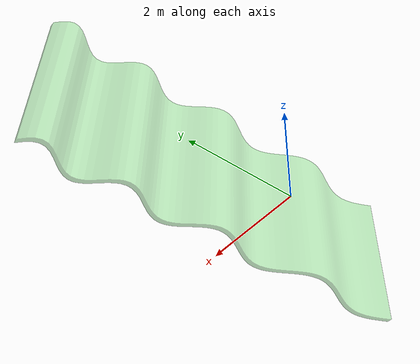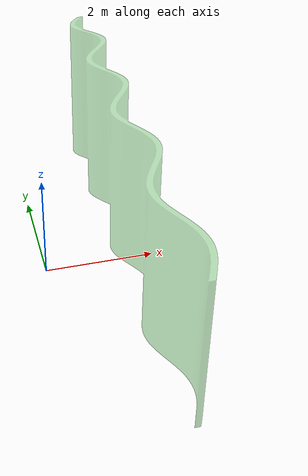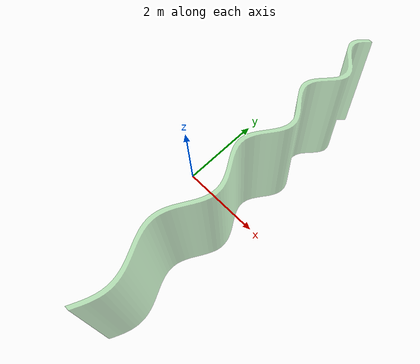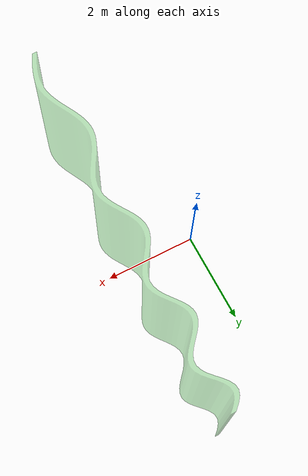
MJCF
<mujoco>
  <asset>
    <material name="sunchip_green" rgba="0.6 0.9 0.6 0.6"/>
    <mesh name="sunchip_surface"
          vertex="0.1187 -4.0000 0.0000 0.1187 -4.0000 3.0000 0.0187 -4.0000 0.0000 0.0187 -4.0000 3.0000 0.1662 -3.9000 0.0000 0.1662 -3.9000 3.0000 0.0662 -3.9000 0.0000 0.0662 -3.9000 3.0000 0.2119 -3.8000 0.0000 0.2119 -3.8000 3.0000 0.1119 -3.8000 0.0000 0.1119 -3.8000 3.0000 0.2535 -3.7000 0.0000 0.2535 -3.7000 3.0000 0.1535 -3.7000 0.0000 0.1535 -3.7000 3.0000 0.2892 -3.6000 0.0000 0.2892 -3.6000 3.0000 0.1892 -3.6000 0.0000 0.1892 -3.6000 3.0000 0.3170 -3.5000 0.0000 0.3170 -3.5000 3.0000 0.2170 -3.5000 0.0000 0.2170 -3.5000 3.0000 0.3355 -3.4000 0.0000 0.3355 -3.4000 3.0000 0.2355 -3.4000 0.0000 0.2355 -3.4000 3.0000 0.3434 -3.3000 0.0000 0.3434 -3.3000 3.0000 0.2434 -3.3000 0.0000 0.2434 -3.3000 3.0000 0.3403 -3.2000 0.0000 0.3403 -3.2000 3.0000 0.2403 -3.2000 0.0000 0.2403 -3.2000 3.0000 0.3259 -3.1000 0.0000 0.3259 -3.1000 3.0000 0.2259 -3.1000 0.0000 0.2259 -3.1000 3.0000 0.3009 -3.0000 0.0000 0.3009 -3.0000 3.0000 0.2009 -3.0000 0.0000 0.2009 -3.0000 3.0000 0.2661 -2.9000 0.0000 0.2661 -2.9000 3.0000 0.1661 -2.9000 0.0000 0.1661 -2.9000 3.0000 0.2233 -2.8000 0.0000 0.2233 -2.8000 3.0000 0.1233 -2.8000 0.0000 0.1233 -2.8000 3.0000 0.1746 -2.7000 0.0000 0.1746 -2.7000 3.0000 0.0746 -2.7000 0.0000 0.0746 -2.7000 3.0000 0.1224 -2.6000 0.0000 0.1224 -2.6000 3.0000 0.0224 -2.6000 0.0000 0.0224 -2.6000 3.0000 0.0696 -2.5000 0.0000 0.0696 -2.5000 3.0000 -0.0304 -2.5000 0.0000 -0.0304 -2.5000 3.0000 0.0192 -2.4000 0.0000 0.0192 -2.4000 3.0000 -0.0808 -2.4000 0.0000 -0.0808 -2.4000 3.0000 -0.0260 -2.3000 0.0000 -0.0260 -2.3000 3.0000 -0.1260 -2.3000 0.0000 -0.1260 -2.3000 3.0000 -0.0631 -2.2000 0.0000 -0.0631 -2.2000 3.0000 -0.1631 -2.2000 0.0000 -0.1631 -2.2000 3.0000 -0.0897 -2.1000 0.0000 -0.0897 -2.1000 3.0000 -0.1897 -2.1000 0.0000 -0.1897 -2.1000 3.0000 -0.1041 -2.0000 0.0000 -0.1041 -2.0000 3.0000 -0.2041 -2.0000 0.0000 -0.2041 -2.0000 3.0000 -0.1050 -1.9000 0.0000 -0.1050 -1.9000 3.0000 -0.2050 -1.9000 0.0000 -0.2050 -1.9000 3.0000 -0.0920 -1.8000 0.0000 -0.0920 -1.8000 3.0000 -0.1920 -1.8000 0.0000 -0.1920 -1.8000 3.0000 -0.0656 -1.7000 0.0000 -0.0656 -1.7000 3.0000 -0.1656 -1.7000 0.0000 -0.1656 -1.7000 3.0000 -0.0271 -1.6000 0.0000 -0.0271 -1.6000 3.0000 -0.1271 -1.6000 0.0000 -0.1271 -1.6000 3.0000 0.0212 -1.5000 0.0000 0.0212 -1.5000 3.0000 -0.0788 -1.5000 0.0000 -0.0788 -1.5000 3.0000 0.0764 -1.4000 0.0000 0.0764 -1.4000 3.0000 -0.0236 -1.4000 0.0000 -0.0236 -1.4000 3.0000 0.1349 -1.3000 0.0000 0.1349 -1.3000 3.0000 0.0349 -1.3000 0.0000 0.0349 -1.3000 3.0000 0.1929 -1.2000 0.0000 0.1929 -1.2000 3.0000 0.0929 -1.2000 0.0000 0.0929 -1.2000 3.0000 0.2461 -1.1000 0.0000 0.2461 -1.1000 3.0000 0.1461 -1.1000 0.0000 0.1461 -1.1000 3.0000 0.2907 -1.0000 0.0000 0.2907 -1.0000 3.0000 0.1907 -1.0000 0.0000 0.1907 -1.0000 3.0000 0.3233 -0.9000 0.0000 0.3233 -0.9000 3.0000 0.2233 -0.9000 0.0000 0.2233 -0.9000 3.0000 0.3410 -0.8000 0.0000 0.3410 -0.8000 3.0000 0.2410 -0.8000 0.0000 0.2410 -0.8000 3.0000 0.3421 -0.7000 0.0000 0.3421 -0.7000 3.0000 0.2421 -0.7000 0.0000 0.2421 -0.7000 3.0000 0.3261 -0.6000 0.0000 0.3261 -0.6000 3.0000 0.2261 -0.6000 0.0000 0.2261 -0.6000 3.0000 0.2938 -0.5000 0.0000 0.2938 -0.5000 3.0000 0.1938 -0.5000 0.0000 0.1938 -0.5000 3.0000 0.2472 -0.4000 0.0000 0.2472 -0.4000 3.0000 0.1472 -0.4000 0.0000 0.1472 -0.4000 3.0000 0.1897 -0.3000 0.0000 0.1897 -0.3000 3.0000 0.0897 -0.3000 0.0000 0.0897 -0.3000 3.0000 0.1258 -0.2000 0.0000 0.1258 -0.2000 3.0000 0.0258 -0.2000 0.0000 0.0258 -0.2000 3.0000 0.0607 -0.1000 0.0000 0.0607 -0.1000 3.0000 -0.0393 -0.1000 0.0000 -0.0393 -0.1000 3.0000 0.0000 0.0000 0.0000 0.0000 0.0000 3.0000 -0.1000 0.0000 0.0000 -0.1000 0.0000 3.0000 -0.0509 0.1000 0.0000 -0.0509 0.1000 3.0000 -0.1509 0.1000 0.0000 -0.1509 0.1000 3.0000 -0.0871 0.2000 0.0000 -0.0871 0.2000 3.0000 -0.1871 0.2000 0.0000 -0.1871 0.2000 3.0000 -0.1049 0.3000 0.0000 -0.1049 0.3000 3.0000 -0.2049 0.3000 0.0000 -0.2049 0.3000 3.0000 -0.1020 0.4000 0.0000 -0.1020 0.4000 3.0000 -0.2020 0.4000 0.0000 -0.2020 0.4000 3.0000 -0.0780 0.5000 0.0000 -0.0780 0.5000 3.0000 -0.1780 0.5000 0.0000 -0.1780 0.5000 3.0000 -0.0347 0.6000 0.0000 -0.0347 0.6000 3.0000 -0.1347 0.6000 0.0000 -0.1347 0.6000 3.0000 0.0243 0.7000 0.0000 0.0243 0.7000 3.0000 -0.0757 0.7000 0.0000 -0.0757 0.7000 3.0000 0.0935 0.8000 0.0000 0.0935 0.8000 3.0000 -0.0065 0.8000 0.0000 -0.0065 0.8000 3.0000 0.1660 0.9000 0.0000 0.1660 0.9000 3.0000 0.0660 0.9000 0.0000 0.0660 0.9000 3.0000 0.2343 1.0000 0.0000 0.2343 1.0000 3.0000 0.1343 1.0000 0.0000 0.1343 1.0000 3.0000 0.2908 1.1000 0.0000 0.2908 1.1000 3.0000 0.1908 1.1000 0.0000 0.1908 1.1000 3.0000 0.3289 1.2000 0.0000 0.3289 1.2000 3.0000 0.2289 1.2000 0.0000 0.2289 1.2000 3.0000 0.3436 1.3000 0.0000 0.3436 1.3000 3.0000 0.2436 1.3000 0.0000 0.2436 1.3000 3.0000 0.3325 1.4000 0.0000 0.3325 1.4000 3.0000 0.2325 1.4000 0.0000 0.2325 1.4000 3.0000 0.2959 1.5000 0.0000 0.2959 1.5000 3.0000 0.1959 1.5000 0.0000 0.1959 1.5000 3.0000 0.2374 1.6000 0.0000 0.2374 1.6000 3.0000 0.1374 1.6000 0.0000 0.1374 1.6000 3.0000 0.1635 1.7000 0.0000 0.1635 1.7000 3.0000 0.0635 1.7000 0.0000 0.0635 1.7000 3.0000 0.0831 1.8000 0.0000 0.0831 1.8000 3.0000 -0.0169 1.8000 0.0000 -0.0169 1.8000 3.0000 0.0063 1.9000 0.0000 0.0063 1.9000 3.0000 -0.0937 1.9000 0.0000 -0.0937 1.9000 3.0000 -0.0563 2.0000 0.0000 -0.0563 2.0000 3.0000 -0.1563 2.0000 0.0000 -0.1563 2.0000 3.0000 -0.0958 2.1000 0.0000 -0.0958 2.1000 3.0000 -0.1958 2.1000 0.0000 -0.1958 2.1000 3.0000 -0.1057 2.2000 0.0000 -0.1057 2.2000 3.0000 -0.2057 2.2000 0.0000 -0.2057 2.2000 3.0000 -0.0834 2.3000 0.0000 -0.0834 2.3000 3.0000 -0.1834 2.3000 0.0000 -0.1834 2.3000 3.0000 -0.0311 2.4000 0.0000 -0.0311 2.4000 3.0000 -0.1311 2.4000 0.0000 -0.1311 2.4000 3.0000 0.0446 2.5000 0.0000 0.0446 2.5000 3.0000 -0.0554 2.5000 0.0000 -0.0554 2.5000 3.0000 0.1328 2.6000 0.0000 0.1328 2.6000 3.0000 0.0328 2.6000 0.0000 0.0328 2.6000 3.0000 0.2198 2.7000 0.0000 0.2198 2.7000 3.0000 0.1198 2.7000 0.0000 0.1198 2.7000 3.0000 0.2914 2.8000 0.0000 0.2914 2.8000 3.0000 0.1914 2.8000 0.0000 0.1914 2.8000 3.0000 0.3349 2.9000 0.0000 0.3349 2.9000 3.0000 0.2349 2.9000 0.0000 0.2349 2.9000 3.0000 0.3415 3.0000 0.0000 0.3415 3.0000 3.0000 0.2415 3.0000 0.0000 0.2415 3.0000 3.0000 0.3085 3.1000 0.0000 0.3085 3.1000 3.0000 0.2085 3.1000 0.0000 0.2085 3.1000 3.0000 0.2403 3.2000 0.0000 0.2403 3.2000 3.0000 0.1403 3.2000 0.0000 0.1403 3.2000 3.0000 0.1482 3.3000 0.0000 0.1482 3.3000 3.0000 0.0482 3.3000 0.0000 0.0482 3.3000 3.0000 0.0491 3.4000 0.0000 0.0491 3.4000 3.0000 -0.0509 3.4000 0.0000 -0.0509 3.4000 3.0000 -0.0375 3.5000 0.0000 -0.0375 3.5000 3.0000 -0.1375 3.5000 0.0000 -0.1375 3.5000 3.0000 -0.0931 3.6000 0.0000 -0.0931 3.6000 3.0000 -0.1931 3.6000 0.0000 -0.1931 3.6000 3.0000 -0.1046 3.7000 0.0000 -0.1046 3.7000 3.0000 -0.2046 3.7000 0.0000 -0.2046 3.7000 3.0000 -0.0672 3.8000 0.0000 -0.0672 3.8000 3.0000 -0.1672 3.8000 0.0000 -0.1672 3.8000 3.0000 0.0128 3.9000 0.0000 0.0128 3.9000 3.0000 -0.0872 3.9000 0.0000 -0.0872 3.9000 3.0000 0.1187 4.0000 0.0000 0.1187 4.0000 3.0000 0.0187 4.0000 0.0000 0.0187 4.0000 3.0000"
          face="0 4 5 0 5 1 2 3 7 2 7 6 0 2 6 0 6 4 1 5 7 1 7 3 4 8 9 4 9 5 6 7 11 6 11 10 4 6 10 4 10 8 5 9 11 5 11 7 8 12 13 8 13 9 10 11 15 10 15 14 8 10 14 8 14 12 9 13 15 9 15 11 12 16 17 12 17 13 14 15 19 14 19 18 12 14 18 12 18 16 13 17 19 13 19 15 16 20 21 16 21 17 18 19 23 18 23 22 16 18 22 16 22 20 17 21 23 17 23 19 20 24 25 20 25 21 22 23 27 22 27 26 20 22 26 20 26 24 21 25 27 21 27 23 24 28 29 24 29 25 26 27 31 26 31 30 24 26 30 24 30 28 25 29 31 25 31 27 28 32 33 28 33 29 30 31 35 30 35 34 28 30 34 28 34 32 29 33 35 29 35 31 32 36 37 32 37 33 34 35 39 34 39 38 32 34 38 32 38 36 33 37 39 33 39 35 36 40 41 36 41 37 38 39 43 38 43 42 36 38 42 36 42 40 37 41 43 37 43 39 40 44 45 40 45 41 42 43 47 42 47 46 40 42 46 40 46 44 41 45 47 41 47 43 44 48 49 44 49 45 46 47 51 46 51 50 44 46 50 44 50 48 45 49 51 45 51 47 48 52 53 48 53 49 50 51 55 50 55 54 48 50 54 48 54 52 49 53 55 49 55 51 52 56 57 52 57 53 54 55 59 54 59 58 52 54 58 52 58 56 53 57 59 53 59 55 56 60 61 56 61 57 58 59 63 58 63 62 56 58 62 56 62 60 57 61 63 57 63 59 60 64 65 60 65 61 62 63 67 62 67 66 60 62 66 60 66 64 61 65 67 61 67 63 64 68 69 64 69 65 66 67 71 66 71 70 64 66 70 64 70 68 65 69 71 65 71 67 68 72 73 68 73 69 70 71 75 70 75 74 68 70 74 68 74 72 69 73 75 69 75 71 72 76 77 72 77 73 74 75 79 74 79 78 72 74 78 72 78 76 73 77 79 73 79 75 76 80 81 76 81 77 78 79 83 78 83 82 76 78 82 76 82 80 77 81 83 77 83 79 80 84 85 80 85 81 82 83 87 82 87 86 80 82 86 80 86 84 81 85 87 81 87 83 84 88 89 84 89 85 86 87 91 86 91 90 84 86 90 84 90 88 85 89 91 85 91 87 88 92 93 88 93 89 90 91 95 90 95 94 88 90 94 88 94 92 89 93 95 89 95 91 92 96 97 92 97 93 94 95 99 94 99 98 92 94 98 92 98 96 93 97 99 93 99 95 96 100 101 96 101 97 98 99 103 98 103 102 96 98 102 96 102 100 97 101 103 97 103 99 100 104 105 100 105 101 102 103 107 102 107 106 100 102 106 100 106 104 101 105 107 101 107 103 104 108 109 104 109 105 106 107 111 106 111 110 104 106 110 104 110 108 105 109 111 105 111 107 108 112 113 108 113 109 110 111 115 110 115 114 108 110 114 108 114 112 109 113 115 109 115 111 112 116 117 112 117 113 114 115 119 114 119 118 112 114 118 112 118 116 113 117 119 113 119 115 116 120 121 116 121 117 118 119 123 118 123 122 116 118 122 116 122 120 117 121 123 117 123 119 120 124 125 120 125 121 122 123 127 122 127 126 120 122 126 120 126 124 121 125 127 121 127 123 124 128 129 124 129 125 126 127 131 126 131 130 124 126 130 124 130 128 125 129 131 125 131 127 128 132 133 128 133 129 130 131 135 130 135 134 128 130 134 128 134 132 129 133 135 129 135 131 132 136 137 132 137 133 134 135 139 134 139 138 132 134 138 132 138 136 133 137 139 133 139 135 136 140 141 136 141 137 138 139 143 138 143 142 136 138 142 136 142 140 137 141 143 137 143 139 140 144 145 140 145 141 142 143 147 142 147 146 140 142 146 140 146 144 141 145 147 141 147 143 144 148 149 144 149 145 146 147 151 146 151 150 144 146 150 144 150 148 145 149 151 145 151 147 148 152 153 148 153 149 150 151 155 150 155 154 148 150 154 148 154 152 149 153 155 149 155 151 152 156 157 152 157 153 154 155 159 154 159 158 152 154 158 152 158 156 153 157 159 153 159 155 156 160 161 156 161 157 158 159 163 158 163 162 156 158 162 156 162 160 157 161 163 157 163 159 160 164 165 160 165 161 162 163 167 162 167 166 160 162 166 160 166 164 161 165 167 161 167 163 164 168 169 164 169 165 166 167 171 166 171 170 164 166 170 164 170 168 165 169 171 165 171 167 168 172 173 168 173 169 170 171 175 170 175 174 168 170 174 168 174 172 169 173 175 169 175 171 172 176 177 172 177 173 174 175 179 174 179 178 172 174 178 172 178 176 173 177 179 173 179 175 176 180 181 176 181 177 178 179 183 178 183 182 176 178 182 176 182 180 177 181 183 177 183 179 180 184 185 180 185 181 182 183 187 182 187 186 180 182 186 180 186 184 181 185 187 181 187 183 184 188 189 184 189 185 186 187 191 186 191 190 184 186 190 184 190 188 185 189 191 185 191 187 188 192 193 188 193 189 190 191 195 190 195 194 188 190 194 188 194 192 189 193 195 189 195 191 192 196 197 192 197 193 194 195 199 194 199 198 192 194 198 192 198 196 193 197 199 193 199 195 196 200 201 196 201 197 198 199 203 198 203 202 196 198 202 196 202 200 197 201 203 197 203 199 200 204 205 200 205 201 202 203 207 202 207 206 200 202 206 200 206 204 201 205 207 201 207 203 204 208 209 204 209 205 206 207 211 206 211 210 204 206 210 204 210 208 205 209 211 205 211 207 208 212 213 208 213 209 210 211 215 210 215 214 208 210 214 208 214 212 209 213 215 209 215 211 212 216 217 212 217 213 214 215 219 214 219 218 212 214 218 212 218 216 213 217 219 213 219 215 216 220 221 216 221 217 218 219 223 218 223 222 216 218 222 216 222 220 217 221 223 217 223 219 220 224 225 220 225 221 222 223 227 222 227 226 220 222 226 220 226 224 221 225 227 221 227 223 224 228 229 224 229 225 226 227 231 226 231 230 224 226 230 224 230 228 225 229 231 225 231 227 228 232 233 228 233 229 230 231 235 230 235 234 228 230 234 228 234 232 229 233 235 229 235 231 232 236 237 232 237 233 234 235 239 234 239 238 232 234 238 232 238 236 233 237 239 233 239 235 236 240 241 236 241 237 238 239 243 238 243 242 236 238 242 236 242 240 237 241 243 237 243 239 240 244 245 240 245 241 242 243 247 242 247 246 240 242 246 240 246 244 241 245 247 241 247 243 244 248 249 244 249 245 246 247 251 246 251 250 244 246 250 244 250 248 245 249 251 245 251 247 248 252 253 248 253 249 250 251 255 250 255 254 248 250 254 248 254 252 249 253 255 249 255 251 252 256 257 252 257 253 254 255 259 254 259 258 252 254 258 252 258 256 253 257 259 253 259 255 256 260 261 256 261 257 258 259 263 258 263 262 256 258 262 256 262 260 257 261 263 257 263 259 260 264 265 260 265 261 262 263 267 262 267 266 260 262 266 260 266 264 261 265 267 261 267 263 264 268 269 264 269 265 266 267 271 266 271 270 264 266 270 264 270 268 265 269 271 265 271 267 268 272 273 268 273 269 270 271 275 270 275 274 268 270 274 268 274 272 269 273 275 269 275 271 272 276 277 272 277 273 274 275 279 274 279 278 272 274 278 272 278 276 273 277 279 273 279 275 276 280 281 276 281 277 278 279 283 278 283 282 276 278 282 276 282 280 277 281 283 277 283 279 280 284 285 280 285 281 282 283 287 282 287 286 280 282 286 280 286 284 281 285 287 281 287 283 284 288 289 284 289 285 286 287 291 286 291 290 284 286 290 284 290 288 285 289 291 285 291 287 288 292 293 288 293 289 290 291 295 290 295 294 288 290 294 288 294 292 289 293 295 289 295 291 292 296 297 292 297 293 294 295 299 294 299 298 292 294 298 292 298 296 293 297 299 293 299 295 296 300 301 296 301 297 298 299 303 298 303 302 296 298 302 296 302 300 297 301 303 297 303 299 300 304 305 300 305 301 302 303 307 302 307 306 300 302 306 300 306 304 301 305 307 301 307 303 304 308 309 304 309 305 306 307 311 306 311 310 304 306 310 304 310 308 305 309 311 305 311 307 308 312 313 308 313 309 310 311 315 310 315 314 308 310 314 308 314 312 309 313 315 309 315 311 312 316 317 312 317 313 314 315 319 314 319 318 312 314 318 312 318 316 313 317 319 313 319 315 316 320 321 316 321 317 318 319 323 318 323 322 316 318 322 316 322 320 317 321 323 317 323 319 0 1 3 0 3 2 320 322 323 320 323 321"/>
  </asset>

  <worldbody>
    <body name="sunchip" pos="1.5 0 0">
      <geom name="sunchip_visual"
            type="mesh"
            mesh="sunchip_surface"
            material="sunchip_green"
            group="2"
            contype="0"
            conaffinity="0"
            mass="0"/>

      <geom name="sunchip_collision_00" type="box" pos="0.0925 -3.9500 1.5" euler="0 0 -25.400" size="0.055 0.0554 1.5" group="3" condim="3" contype="2" conaffinity="8" friction="0.2 0 0" margin="0" gap="0" rgba="1 0 0 0.25" mass="0"/>
      <geom name="sunchip_collision_01" type="box" pos="0.1390 -3.8500 1.5" euler="0 0 -24.541" size="0.055 0.0550 1.5" group="3" condim="3" contype="2" conaffinity="8" friction="0.2 0 0" margin="0" gap="0" rgba="1 0 0 0.25" mass="0"/>
      <geom name="sunchip_collision_02" type="box" pos="0.1827 -3.7500 1.5" euler="0 0 -22.628" size="0.055 0.0542 1.5" group="3" condim="3" contype="2" conaffinity="8" friction="0.2 0 0" margin="0" gap="0" rgba="1 0 0 0.25" mass="0"/>
      <geom name="sunchip_collision_03" type="box" pos="0.2214 -3.6500 1.5" euler="0 0 -19.629" size="0.055 0.0531 1.5" group="3" condim="3" contype="2" conaffinity="8" friction="0.2 0 0" margin="0" gap="0" rgba="1 0 0 0.25" mass="0"/>
      <geom name="sunchip_collision_04" type="box" pos="0.2531 -3.5500 1.5" euler="0 0 -15.545" size="0.055 0.0519 1.5" group="3" condim="3" contype="2" conaffinity="8" friction="0.2 0 0" margin="0" gap="0" rgba="1 0 0 0.25" mass="0"/>
      <geom name="sunchip_collision_05" type="box" pos="0.2762 -3.4500 1.5" euler="0 0 -10.453" size="0.055 0.0508 1.5" group="3" condim="3" contype="2" conaffinity="8" friction="0.2 0 0" margin="0" gap="0" rgba="1 0 0 0.25" mass="0"/>
      <geom name="sunchip_collision_06" type="box" pos="0.2895 -3.3500 1.5" euler="0 0 -4.556" size="0.055 0.0502 1.5" group="3" condim="3" contype="2" conaffinity="8" friction="0.2 0 0" margin="0" gap="0" rgba="1 0 0 0.25" mass="0"/>
      <geom name="sunchip_collision_07" type="box" pos="0.2919 -3.2500 1.5" euler="0 0 1.802" size="0.055 0.0500 1.5" group="3" condim="3" contype="2" conaffinity="8" friction="0.2 0 0" margin="0" gap="0" rgba="1 0 0 0.25" mass="0"/>
      <geom name="sunchip_collision_08" type="box" pos="0.2831 -3.1500 1.5" euler="0 0 8.168" size="0.055 0.0505 1.5" group="3" condim="3" contype="2" conaffinity="8" friction="0.2 0 0" margin="0" gap="0" rgba="1 0 0 0.25" mass="0"/>
      <geom name="sunchip_collision_09" type="box" pos="0.2634 -3.0500 1.5" euler="0 0 14.080" size="0.055 0.0515 1.5" group="3" condim="3" contype="2" conaffinity="8" friction="0.2 0 0" margin="0" gap="0" rgba="1 0 0 0.25" mass="0"/>
      <geom name="sunchip_collision_10" type="box" pos="0.2335 -2.9500 1.5" euler="0 0 19.162" size="0.055 0.0529 1.5" group="3" condim="3" contype="2" conaffinity="8" friction="0.2 0 0" margin="0" gap="0" rgba="1 0 0 0.25" mass="0"/>
      <geom name="sunchip_collision_11" type="box" pos="0.1947 -2.8500 1.5" euler="0 0 23.173" size="0.055 0.0544 1.5" group="3" condim="3" contype="2" conaffinity="8" friction="0.2 0 0" margin="0" gap="0" rgba="1 0 0 0.25" mass="0"/>
      <geom name="sunchip_collision_12" type="box" pos="0.1489 -2.7500 1.5" euler="0 0 25.988" size="0.055 0.0556 1.5" group="3" condim="3" contype="2" conaffinity="8" friction="0.2 0 0" margin="0" gap="0" rgba="1 0 0 0.25" mass="0"/>
      <geom name="sunchip_collision_13" type="box" pos="0.0985 -2.6500 1.5" euler="0 0 27.551" size="0.055 0.0564 1.5" group="3" condim="3" contype="2" conaffinity="8" friction="0.2 0 0" margin="0" gap="0" rgba="1 0 0 0.25" mass="0"/>
      <geom name="sunchip_collision_14" type="box" pos="0.0460 -2.5500 1.5" euler="0 0 27.826" size="0.055 0.0565 1.5" group="3" condim="3" contype="2" conaffinity="8" friction="0.2 0 0" margin="0" gap="0" rgba="1 0 0 0.25" mass="0"/>
      <geom name="sunchip_collision_15" type="box" pos="-0.0056 -2.4500 1.5" euler="0 0 26.764" size="0.055 0.0560 1.5" group="3" condim="3" contype="2" conaffinity="8" friction="0.2 0 0" margin="0" gap="0" rgba="1 0 0 0.25" mass="0"/>
      <geom name="sunchip_collision_16" type="box" pos="-0.0534 -2.3500 1.5" euler="0 0 24.296" size="0.055 0.0549 1.5" group="3" condim="3" contype="2" conaffinity="8" friction="0.2 0 0" margin="0" gap="0" rgba="1 0 0 0.25" mass="0"/>
      <geom name="sunchip_collision_17" type="box" pos="-0.0945 -2.2500 1.5" euler="0 0 20.354" size="0.055 0.0533 1.5" group="3" condim="3" contype="2" conaffinity="8" friction="0.2 0 0" margin="0" gap="0" rgba="1 0 0 0.25" mass="0"/>
      <geom name="sunchip_collision_18" type="box" pos="-0.1264 -2.1500 1.5" euler="0 0 14.928" size="0.055 0.0517 1.5" group="3" condim="3" contype="2" conaffinity="8" friction="0.2 0 0" margin="0" gap="0" rgba="1 0 0 0.25" mass="0"/>
      <geom name="sunchip_collision_19" type="box" pos="-0.1469 -2.0500 1.5" euler="0 0 8.173" size="0.055 0.0505 1.5" group="3" condim="3" contype="2" conaffinity="8" friction="0.2 0 0" margin="0" gap="0" rgba="1 0 0 0.25" mass="0"/>
      <geom name="sunchip_collision_20" type="box" pos="-0.1545 -1.9500 1.5" euler="0 0 0.504" size="0.055 0.0500 1.5" group="3" condim="3" contype="2" conaffinity="8" friction="0.2 0 0" margin="0" gap="0" rgba="1 0 0 0.25" mass="0"/>
      <geom name="sunchip_collision_21" type="box" pos="-0.1485 -1.8500 1.5" euler="0 0 -7.405" size="0.055 0.0504 1.5" group="3" condim="3" contype="2" conaffinity="8" friction="0.2 0 0" margin="0" gap="0" rgba="1 0 0 0.25" mass="0"/>
      <geom name="sunchip_collision_22" type="box" pos="-0.1288 -1.7500 1.5" euler="0 0 -14.790" size="0.055 0.0517 1.5" group="3" condim="3" contype="2" conaffinity="8" friction="0.2 0 0" margin="0" gap="0" rgba="1 0 0 0.25" mass="0"/>
      <geom name="sunchip_collision_23" type="box" pos="-0.0963 -1.6500 1.5" euler="0 0 -21.035" size="0.055 0.0536 1.5" group="3" condim="3" contype="2" conaffinity="8" friction="0.2 0 0" margin="0" gap="0" rgba="1 0 0 0.25" mass="0"/>
      <geom name="sunchip_collision_24" type="box" pos="-0.0530 -1.5500 1.5" euler="0 0 -25.783" size="0.055 0.0555 1.5" group="3" condim="3" contype="2" conaffinity="8" friction="0.2 0 0" margin="0" gap="0" rgba="1 0 0 0.25" mass="0"/>
      <geom name="sunchip_collision_25" type="box" pos="-0.0012 -1.4500 1.5" euler="0 0 -28.898" size="0.055 0.0571 1.5" group="3" condim="3" contype="2" conaffinity="8" friction="0.2 0 0" margin="0" gap="0" rgba="1 0 0 0.25" mass="0"/>
      <geom name="sunchip_collision_26" type="box" pos="0.0557 -1.3500 1.5" euler="0 0 -30.342" size="0.055 0.0579 1.5" group="3" condim="3" contype="2" conaffinity="8" friction="0.2 0 0" margin="0" gap="0" rgba="1 0 0 0.25" mass="0"/>
      <geom name="sunchip_collision_27" type="box" pos="0.1139 -1.2500 1.5" euler="0 0 -30.083" size="0.055 0.0578 1.5" group="3" condim="3" contype="2" conaffinity="8" friction="0.2 0 0" margin="0" gap="0" rgba="1 0 0 0.25" mass="0"/>
      <geom name="sunchip_collision_28" type="box" pos="0.1695 -1.1500 1.5" euler="0 0 -28.032" size="0.055 0.0566 1.5" group="3" condim="3" contype="2" conaffinity="8" friction="0.2 0 0" margin="0" gap="0" rgba="1 0 0 0.25" mass="0"/>
      <geom name="sunchip_collision_29" type="box" pos="0.2184 -1.0500 1.5" euler="0 0 -24.051" size="0.055 0.0548 1.5" group="3" condim="3" contype="2" conaffinity="8" friction="0.2 0 0" margin="0" gap="0" rgba="1 0 0 0.25" mass="0"/>
      <geom name="sunchip_collision_30" type="box" pos="0.2570 -0.9500 1.5" euler="0 0 -18.024" size="0.055 0.0526 1.5" group="3" condim="3" contype="2" conaffinity="8" friction="0.2 0 0" margin="0" gap="0" rgba="1 0 0 0.25" mass="0"/>
      <geom name="sunchip_collision_31" type="box" pos="0.2821 -0.8500 1.5" euler="0 0 -10.042" size="0.055 0.0508 1.5" group="3" condim="3" contype="2" conaffinity="8" friction="0.2 0 0" margin="0" gap="0" rgba="1 0 0 0.25" mass="0"/>
      <geom name="sunchip_collision_32" type="box" pos="0.2915 -0.7500 1.5" euler="0 0 -0.649" size="0.055 0.0500 1.5" group="3" condim="3" contype="2" conaffinity="8" friction="0.2 0 0" margin="0" gap="0" rgba="1 0 0 0.25" mass="0"/>
      <geom name="sunchip_collision_33" type="box" pos="0.2841 -0.6500 1.5" euler="0 0 9.087" size="0.055 0.0506 1.5" group="3" condim="3" contype="2" conaffinity="8" friction="0.2 0 0" margin="0" gap="0" rgba="1 0 0 0.25" mass="0"/>
      <geom name="sunchip_collision_34" type="box" pos="0.2599 -0.5500 1.5" euler="0 0 17.927" size="0.055 0.0526 1.5" group="3" condim="3" contype="2" conaffinity="8" friction="0.2 0 0" margin="0" gap="0" rgba="1 0 0 0.25" mass="0"/>
      <geom name="sunchip_collision_35" type="box" pos="0.2205 -0.4500 1.5" euler="0 0 24.983" size="0.055 0.0552 1.5" group="3" condim="3" contype="2" conaffinity="8" friction="0.2 0 0" margin="0" gap="0" rgba="1 0 0 0.25" mass="0"/>
      <geom name="sunchip_collision_36" type="box" pos="0.1684 -0.3500 1.5" euler="0 0 29.882" size="0.055 0.0577 1.5" group="3" condim="3" contype="2" conaffinity="8" friction="0.2 0 0" margin="0" gap="0" rgba="1 0 0 0.25" mass="0"/>
      <geom name="sunchip_collision_37" type="box" pos="0.1078 -0.2500 1.5" euler="0 0 32.571" size="0.055 0.0593 1.5" group="3" condim="3" contype="2" conaffinity="8" friction="0.2 0 0" margin="0" gap="0" rgba="1 0 0 0.25" mass="0"/>
      <geom name="sunchip_collision_38" type="box" pos="0.0433 -0.1500 1.5" euler="0 0 33.061" size="0.055 0.0597 1.5" group="3" condim="3" contype="2" conaffinity="8" friction="0.2 0 0" margin="0" gap="0" rgba="1 0 0 0.25" mass="0"/>
      <geom name="sunchip_collision_39" type="box" pos="-0.0196 -0.0500 1.5" euler="0 0 31.271" size="0.055 0.0585 1.5" group="3" condim="3" contype="2" conaffinity="8" friction="0.2 0 0" margin="0" gap="0" rgba="1 0 0 0.25" mass="0"/>
      <geom name="sunchip_collision_40" type="box" pos="-0.0755 0.0500 1.5" euler="0 0 26.978" size="0.055 0.0561 1.5" group="3" condim="3" contype="2" conaffinity="8" friction="0.2 0 0" margin="0" gap="0" rgba="1 0 0 0.25" mass="0"/>
      <geom name="sunchip_collision_41" type="box" pos="-0.1190 0.1500 1.5" euler="0 0 19.909" size="0.055 0.0532 1.5" group="3" condim="3" contype="2" conaffinity="8" friction="0.2 0 0" margin="0" gap="0" rgba="1 0 0 0.25" mass="0"/>
      <geom name="sunchip_collision_42" type="box" pos="-0.1460 0.2500 1.5" euler="0 0 10.076" size="0.055 0.0508 1.5" group="3" condim="3" contype="2" conaffinity="8" friction="0.2 0 0" margin="0" gap="0" rgba="1 0 0 0.25" mass="0"/>
      <geom name="sunchip_collision_43" type="box" pos="-0.1534 0.3500 1.5" euler="0 0 -1.664" size="0.055 0.0500 1.5" group="3" condim="3" contype="2" conaffinity="8" friction="0.2 0 0" margin="0" gap="0" rgba="1 0 0 0.25" mass="0"/>
      <geom name="sunchip_collision_44" type="box" pos="-0.1400 0.4500 1.5" euler="0 0 -13.465" size="0.055 0.0514 1.5" group="3" condim="3" contype="2" conaffinity="8" friction="0.2 0 0" margin="0" gap="0" rgba="1 0 0 0.25" mass="0"/>
      <geom name="sunchip_collision_45" type="box" pos="-0.1064 0.5500 1.5" euler="0 0 -23.419" size="0.055 0.0545 1.5" group="3" condim="3" contype="2" conaffinity="8" friction="0.2 0 0" margin="0" gap="0" rgba="1 0 0 0.25" mass="0"/>
      <geom name="sunchip_collision_46" type="box" pos="-0.0552 0.6500 1.5" euler="0 0 -30.537" size="0.055 0.0581 1.5" group="3" condim="3" contype="2" conaffinity="8" friction="0.2 0 0" margin="0" gap="0" rgba="1 0 0 0.25" mass="0"/>
      <geom name="sunchip_collision_47" type="box" pos="0.0089 0.7500 1.5" euler="0 0 -34.678" size="0.055 0.0608 1.5" group="3" condim="3" contype="2" conaffinity="8" friction="0.2 0 0" margin="0" gap="0" rgba="1 0 0 0.25" mass="0"/>
      <geom name="sunchip_collision_48" type="box" pos="0.0797 0.8500 1.5" euler="0 0 -35.954" size="0.055 0.0618 1.5" group="3" condim="3" contype="2" conaffinity="8" friction="0.2 0 0" margin="0" gap="0" rgba="1 0 0 0.25" mass="0"/>
      <geom name="sunchip_collision_49" type="box" pos="0.1501 0.9500 1.5" euler="0 0 -34.333" size="0.055 0.0605 1.5" group="3" condim="3" contype="2" conaffinity="8" friction="0.2 0 0" margin="0" gap="0" rgba="1 0 0 0.25" mass="0"/>
      <geom name="sunchip_collision_50" type="box" pos="0.2125 1.0500 1.5" euler="0 0 -29.478" size="0.055 0.0574 1.5" group="3" condim="3" contype="2" conaffinity="8" friction="0.2 0 0" margin="0" gap="0" rgba="1 0 0 0.25" mass="0"/>
      <geom name="sunchip_collision_51" type="box" pos="0.2599 1.1500 1.5" euler="0 0 -20.856" size="0.055 0.0535 1.5" group="3" condim="3" contype="2" conaffinity="8" friction="0.2 0 0" margin="0" gap="0" rgba="1 0 0 0.25" mass="0"/>
      <geom name="sunchip_collision_52" type="box" pos="0.2863 1.2500 1.5" euler="0 0 -8.379" size="0.055 0.0505 1.5" group="3" condim="3" contype="2" conaffinity="8" friction="0.2 0 0" margin="0" gap="0" rgba="1 0 0 0.25" mass="0"/>
      <geom name="sunchip_collision_53" type="box" pos="0.2881 1.3500 1.5" euler="0 0 6.360" size="0.055 0.0503 1.5" group="3" condim="3" contype="2" conaffinity="8" friction="0.2 0 0" margin="0" gap="0" rgba="1 0 0 0.25" mass="0"/>
      <geom name="sunchip_collision_54" type="box" pos="0.2642 1.4500 1.5" euler="0 0 20.100" size="0.055 0.0532 1.5" group="3" condim="3" contype="2" conaffinity="8" friction="0.2 0 0" margin="0" gap="0" rgba="1 0 0 0.25" mass="0"/>
      <geom name="sunchip_collision_55" type="box" pos="0.2167 1.5500 1.5" euler="0 0 30.324" size="0.055 0.0579 1.5" group="3" condim="3" contype="2" conaffinity="8" friction="0.2 0 0" margin="0" gap="0" rgba="1 0 0 0.25" mass="0"/>
      <geom name="sunchip_collision_56" type="box" pos="0.1505 1.6500 1.5" euler="0 0 36.462" size="0.055 0.0622 1.5" group="3" condim="3" contype="2" conaffinity="8" friction="0.2 0 0" margin="0" gap="0" rgba="1 0 0 0.25" mass="0"/>
      <geom name="sunchip_collision_57" type="box" pos="0.0733 1.7500 1.5" euler="0 0 38.815" size="0.055 0.0642 1.5" group="3" condim="3" contype="2" conaffinity="8" friction="0.2 0 0" margin="0" gap="0" rgba="1 0 0 0.25" mass="0"/>
      <geom name="sunchip_collision_58" type="box" pos="-0.0053 1.8500 1.5" euler="0 0 37.505" size="0.055 0.0630 1.5" group="3" condim="3" contype="2" conaffinity="8" friction="0.2 0 0" margin="0" gap="0" rgba="1 0 0 0.25" mass="0"/>
      <geom name="sunchip_collision_59" type="box" pos="-0.0750 1.9500 1.5" euler="0 0 32.073" size="0.055 0.0590 1.5" group="3" condim="3" contype="2" conaffinity="8" friction="0.2 0 0" margin="0" gap="0" rgba="1 0 0 0.25" mass="0"/>
      <geom name="sunchip_collision_60" type="box" pos="-0.1261 2.0500 1.5" euler="0 0 21.544" size="0.055 0.0538 1.5" group="3" condim="3" contype="2" conaffinity="8" friction="0.2 0 0" margin="0" gap="0" rgba="1 0 0 0.25" mass="0"/>
      <geom name="sunchip_collision_61" type="box" pos="-0.1508 2.1500 1.5" euler="0 0 5.644" size="0.055 0.0502 1.5" group="3" condim="3" contype="2" conaffinity="8" friction="0.2 0 0" margin="0" gap="0" rgba="1 0 0 0.25" mass="0"/>
      <geom name="sunchip_collision_62" type="box" pos="-0.1446 2.2500 1.5" euler="0 0 -12.550" size="0.055 0.0512 1.5" group="3" condim="3" contype="2" conaffinity="8" friction="0.2 0 0" margin="0" gap="0" rgba="1 0 0 0.25" mass="0"/>
      <geom name="sunchip_collision_63" type="box" pos="-0.1073 2.3500 1.5" euler="0 0 -27.634" size="0.055 0.0564 1.5" group="3" condim="3" contype="2" conaffinity="8" friction="0.2 0 0" margin="0" gap="0" rgba="1 0 0 0.25" mass="0"/>
      <geom name="sunchip_collision_64" type="box" pos="-0.0433 2.4500 1.5" euler="0 0 -37.121" size="0.055 0.0627 1.5" group="3" condim="3" contype="2" conaffinity="8" friction="0.2 0 0" margin="0" gap="0" rgba="1 0 0 0.25" mass="0"/>
      <geom name="sunchip_collision_65" type="box" pos="0.0387 2.5500 1.5" euler="0 0 -41.401" size="0.055 0.0667 1.5" group="3" condim="3" contype="2" conaffinity="8" friction="0.2 0 0" margin="0" gap="0" rgba="1 0 0 0.25" mass="0"/>
      <geom name="sunchip_collision_66" type="box" pos="0.1263 2.6500 1.5" euler="0 0 -41.042" size="0.055 0.0663 1.5" group="3" condim="3" contype="2" conaffinity="8" friction="0.2 0 0" margin="0" gap="0" rgba="1 0 0 0.25" mass="0"/>
      <geom name="sunchip_collision_67" type="box" pos="0.2056 2.7500 1.5" euler="0 0 -35.610" size="0.055 0.0615 1.5" group="3" condim="3" contype="2" conaffinity="8" friction="0.2 0 0" margin="0" gap="0" rgba="1 0 0 0.25" mass="0"/>
      <geom name="sunchip_collision_68" type="box" pos="0.2632 2.8500 1.5" euler="0 0 -23.494" size="0.055 0.0545 1.5" group="3" condim="3" contype="2" conaffinity="8" friction="0.2 0 0" margin="0" gap="0" rgba="1 0 0 0.25" mass="0"/>
      <geom name="sunchip_collision_69" type="box" pos="0.2882 2.9500 1.5" euler="0 0 -3.782" size="0.055 0.0501 1.5" group="3" condim="3" contype="2" conaffinity="8" friction="0.2 0 0" margin="0" gap="0" rgba="1 0 0 0.25" mass="0"/>
      <geom name="sunchip_collision_70" type="box" pos="0.2750 3.0500 1.5" euler="0 0 18.253" size="0.055 0.0526 1.5" group="3" condim="3" contype="2" conaffinity="8" friction="0.2 0 0" margin="0" gap="0" rgba="1 0 0 0.25" mass="0"/>
      <geom name="sunchip_collision_71" type="box" pos="0.2244 3.1500 1.5" euler="0 0 34.299" size="0.055 0.0605 1.5" group="3" condim="3" contype="2" conaffinity="8" friction="0.2 0 0" margin="0" gap="0" rgba="1 0 0 0.25" mass="0"/>
      <geom name="sunchip_collision_72" type="box" pos="0.1443 3.2500 1.5" euler="0 0 42.643" size="0.055 0.0680 1.5" group="3" condim="3" contype="2" conaffinity="8" friction="0.2 0 0" margin="0" gap="0" rgba="1 0 0 0.25" mass="0"/>
      <geom name="sunchip_collision_73" type="box" pos="0.0487 3.3500 1.5" euler="0 0 44.746" size="0.055 0.0704 1.5" group="3" condim="3" contype="2" conaffinity="8" friction="0.2 0 0" margin="0" gap="0" rgba="1 0 0 0.25" mass="0"/>
      <geom name="sunchip_collision_74" type="box" pos="-0.0442 3.4500 1.5" euler="0 0 40.893" size="0.055 0.0661 1.5" group="3" condim="3" contype="2" conaffinity="8" friction="0.2 0 0" margin="0" gap="0" rgba="1 0 0 0.25" mass="0"/>
      <geom name="sunchip_collision_75" type="box" pos="-0.1153 3.5500 1.5" euler="0 0 29.095" size="0.055 0.0572 1.5" group="3" condim="3" contype="2" conaffinity="8" friction="0.2 0 0" margin="0" gap="0" rgba="1 0 0 0.25" mass="0"/>
      <geom name="sunchip_collision_76" type="box" pos="-0.1489 3.6500 1.5" euler="0 0 6.521" size="0.055 0.0503 1.5" group="3" condim="3" contype="2" conaffinity="8" friction="0.2 0 0" margin="0" gap="0" rgba="1 0 0 0.25" mass="0"/>
      <geom name="sunchip_collision_77" type="box" pos="-0.1359 3.7500 1.5" euler="0 0 -20.482" size="0.055 0.0534 1.5" group="3" condim="3" contype="2" conaffinity="8" friction="0.2 0 0" margin="0" gap="0" rgba="1 0 0 0.25" mass="0"/>
      <geom name="sunchip_collision_78" type="box" pos="-0.0772 3.8500 1.5" euler="0 0 -38.654" size="0.055 0.0640 1.5" group="3" condim="3" contype="2" conaffinity="8" friction="0.2 0 0" margin="0" gap="0" rgba="1 0 0 0.25" mass="0"/>
      <geom name="sunchip_collision_79" type="box" pos="0.0157 3.9500 1.5" euler="0 0 -46.654" size="0.055 0.0728 1.5" group="3" condim="3" contype="2" conaffinity="8" friction="0.2 0 0" margin="0" gap="0" rgba="1 0 0 0.25" mass="0"/>
    </body>
  </worldbody>
</mujoco>
